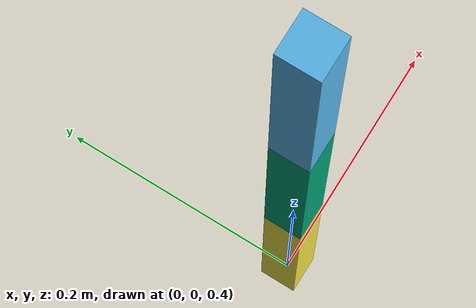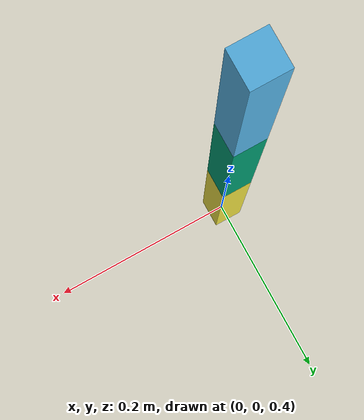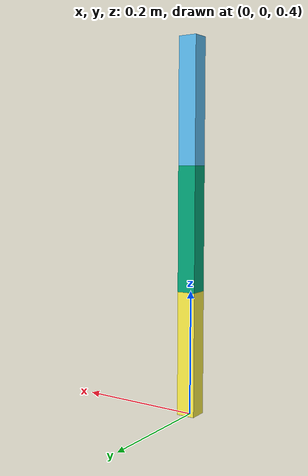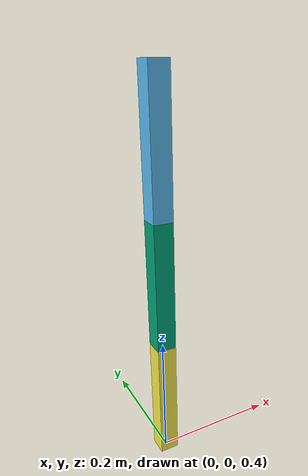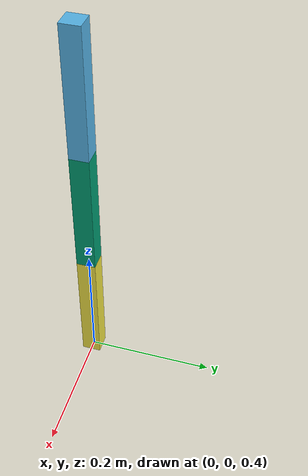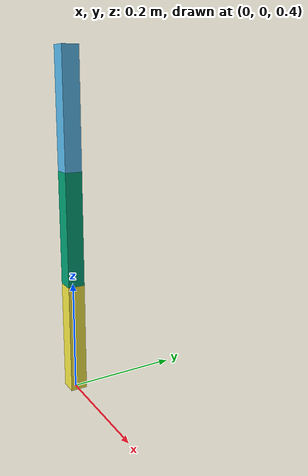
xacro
<?xml version="1.0"?>

<!-- Robot Name -->
<robot name="Test_Robot" xmlns:xacro="http://ros.org/wiki/xacro">

<!-- Import Transmissions -->
<xacro:include filename="$(find licasa1_description)/urdf/test_robot.transmission.xacro" />
<xacro:Test_Robot_transmission name="Test_Robot" hardware_interface="hardware_interface/EffortJointInterface"/>

<!-- Import Gazebo plugins -->
<xacro:include filename="$(find licasa1_description)/gazebo/test_gazebo.urdf.xacro"/>

<link name="world"/>

<!-- TESTBENCH -->

<!-- FIRST LINK-->
<joint name="first_joint" type="revolute">
  <origin rpy="0 0 0" xyz="0 0 1.0"/>
  <parent link="world"/>
  <child link="first_link"/>
  <axis xyz="1 0 0"/>
  <dynamics damping="0.1" friction="0.0"/>
  <limit effort="10000000000000000000000000000000000000" lower="${-180/180*pi}" upper="${180/180*pi}" velocity="10000000000000000000000000000000000000"/>
</joint>

<link name="first_link">
  <inertial>
    <origin xyz="0 0 -0.1"/>
    <mass value="0.233"/>
    <inertia ixx="1e-1" ixy="0.0" ixz="0.0" iyy="1e-1" iyz="0.0" izz="1e-1"/>
  </inertial>
  <visual>
    <origin rpy="0 0 0" xyz="0 0 -0.1"/>
    <geometry>
      <box size="0.03 0.03 0.2"/>
    </geometry>
  </visual>
</link>

<!-- SECOND LINK-->
<joint name="second_joint" type="revolute">
  <origin rpy="0 0 0" xyz="0 0 -0.2"/>
  <parent link="first_link"/>
  <child link="second_link"/>
  <axis xyz="1 0 0"/>
  <dynamics damping="0.0" friction="0.0"/>
  <limit effort="10000000000000000000000000000000000000" lower="${-180/180*pi}" upper="${180/180*pi}" velocity="10000000000000000000000000000000000000"/>
</joint>

<link name="second_link">
  <inertial>
    <origin xyz="0 0 -0.1"/>
    <mass value="0.233"/>
    <inertia ixx="1e-1" ixy="0.0" ixz="0.0" iyy="1e-1" iyz="0.0" izz="1e-1"/>
  </inertial>
  <visual>
    <origin rpy="0 0 0" xyz="0 0 -0.1"/>
    <geometry>
      <box size="0.03 0.03 0.2"/>
    </geometry>
  </visual>
</link>

<!-- THIRD LINK-->
<joint name="third_joint" type="revolute">
  <origin rpy="0 0 0" xyz="0 0 -0.2"/>
  <parent link="second_link"/>
  <child link="third_link"/>
  <axis xyz="1 0 0"/>
  <dynamics damping="0.0" friction="0.0"/>
  <limit effort="10000000000000000000000000000000000000" lower="${-180/180*pi}" upper="${180/180*pi}" velocity="10000000000000000000000000000000000000"/>
</joint>

<link name="third_link">
  <inertial>
    <origin xyz="0 0 -0.1"/>
    <mass value="0.233"/>
    <inertia ixx="1e-1" ixy="0.0" ixz="0.0" iyy="1e-1" iyz="0.0" izz="1e-1"/>
  </inertial>
  <visual>
    <origin rpy="0 0 0" xyz="0 0 -0.1"/>
    <geometry>
      <box size="0.03 0.03 0.2"/>
    </geometry>
  </visual>
</link>

</robot>
